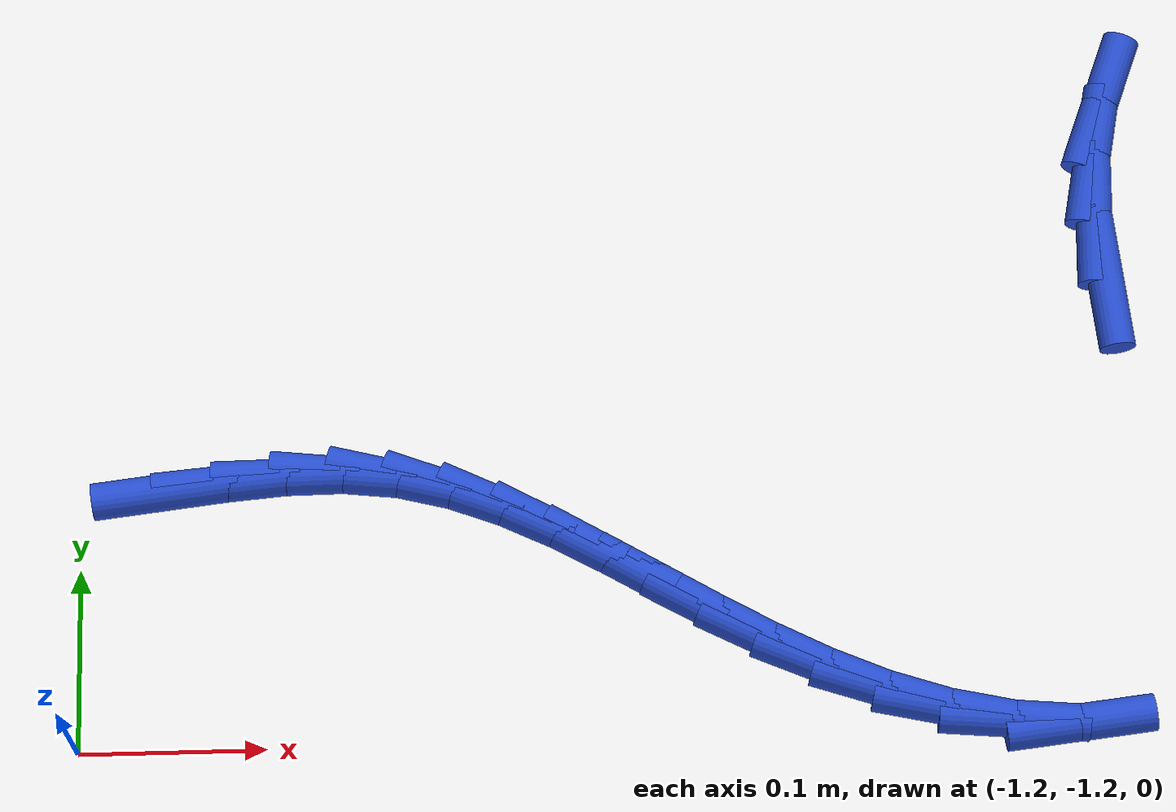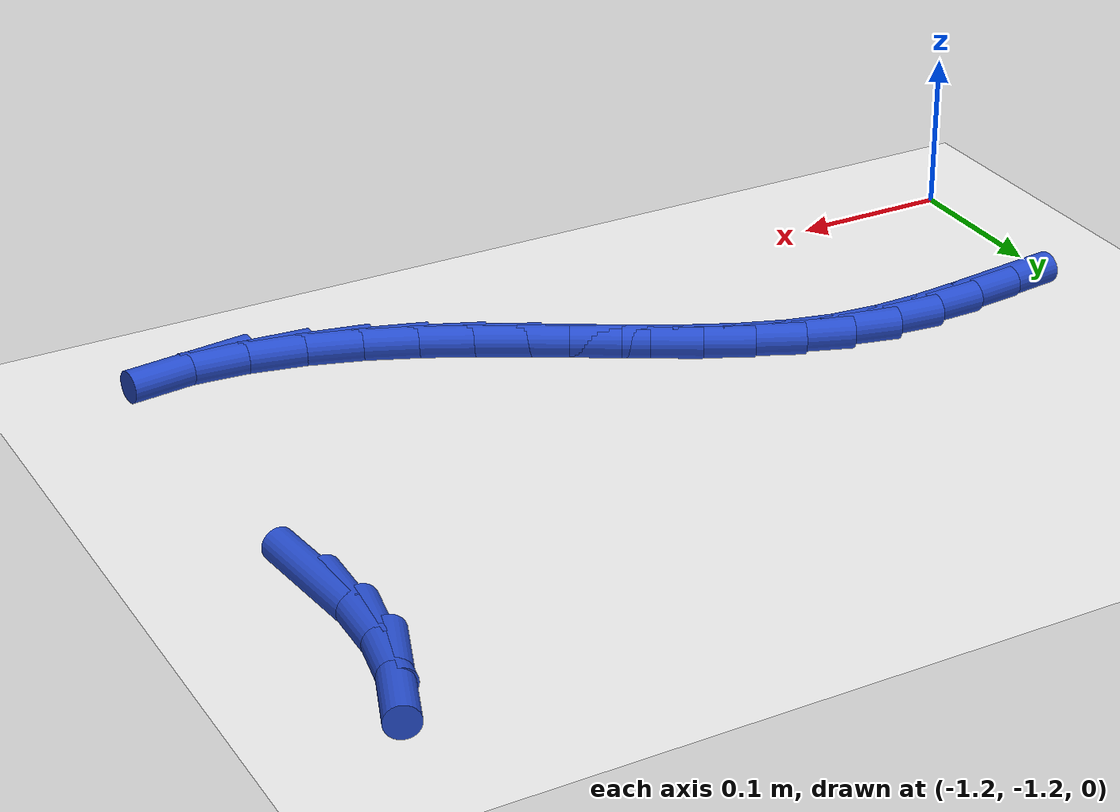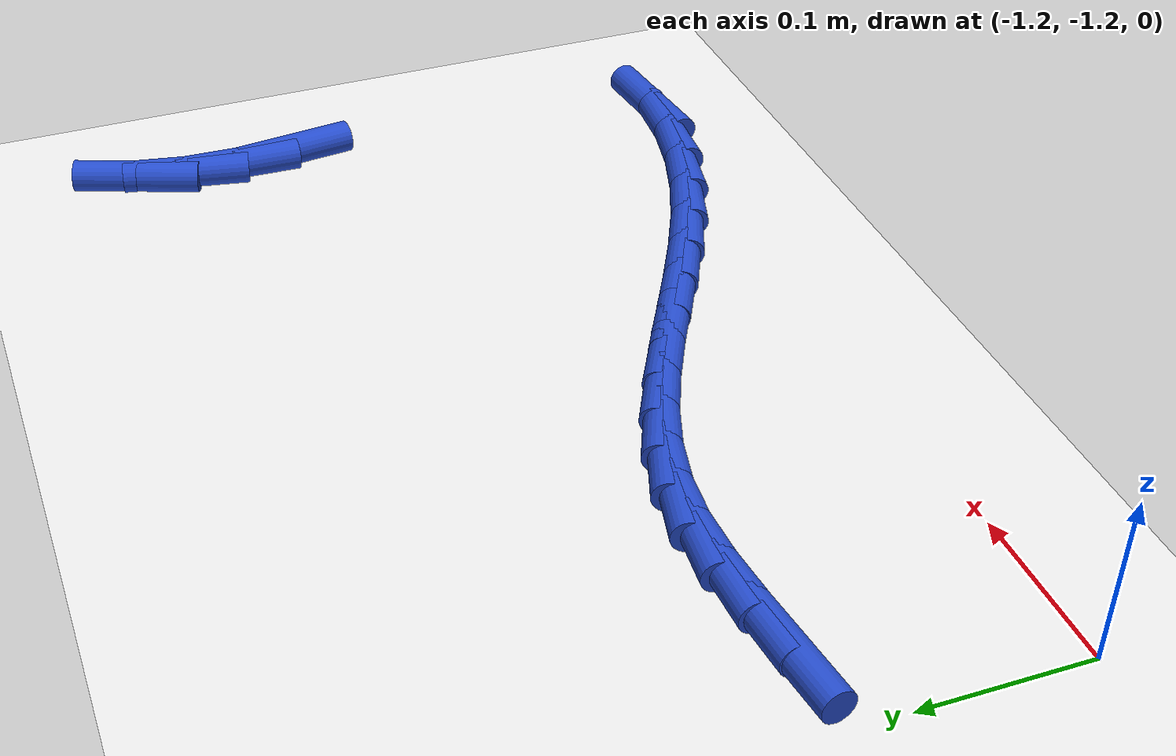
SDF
<sdf version="1.6">
 <world name="default">
  <model name="ground_plane">
   <static>1</static>
   <link name="link">
    <collision name="collision">
     <geometry><plane><normal>0 0 1</normal><size>100 100</size></plane></geometry>
     <surface><friction><ode><mu>100</mu><mu2>50</mu2></ode></friction></surface>
    </collision>
    <visual name="visual">
     <cast_shadows>0</cast_shadows>
     <geometry><plane><normal>0 0 1</normal><size>100 100</size></plane></geometry>
     <material>
      <script><uri>file://media/materials/scripts/gazebo.material</uri><name>Gazebo/WhiteGlow</name></script>
     </material>
    </visual>
   </link>
  </model>
  <model name="line">
   <link name="link_187">
    <pose>-1.1534591041920514 -1.0597393139319555 0.01 0 1.57 0.11962392462760403</pose>
    <collision name="collision">
     <geometry><cylinder><radius>0.01</radius><length>0.08</length></cylinder></geometry>
    </collision>
    <visual name="visual">
     <material>
      <script><name>Gazebo/Blue</name><uri>file://media/materials/scripts/gazebo.material</uri></script>
     </material>
     <geometry><cylinder><radius>0.01</radius><length>0.08</length></cylinder></geometry>
    </visual>
   </link>
   <link name="link_188">
    <pose>-1.121209077142977 -1.055862931268855 0.01 0 1.57 0.08878764631967405</pose>
    <collision name="collision">
     <geometry><cylinder><radius>0.01</radius><length>0.08</length></cylinder></geometry>
    </collision>
    <visual name="visual">
     <material>
      <script><name>Gazebo/Blue</name><uri>file://media/materials/scripts/gazebo.material</uri></script>
     </material>
     <geometry><cylinder><radius>0.01</radius><length>0.08</length></cylinder></geometry>
    </visual>
   </link>
   <link name="link_189">
    <pose>-1.089431234873752 -1.0530340138548526 0.01 0 1.57 0.01639721257508053</pose>
    <collision name="collision">
     <geometry><cylinder><radius>0.01</radius><length>0.08</length></cylinder></geometry>
    </collision>
    <visual name="visual">
     <material>
      <script><name>Gazebo/Blue</name><uri>file://media/materials/scripts/gazebo.material</uri></script>
     </material>
     <geometry><cylinder><radius>0.01</radius><length>0.08</length></cylinder></geometry>
    </visual>
   </link>
   <link name="link_190">
    <pose>-1.0584220406669251 -1.0525255039307306 0.01 0 1.57 -0.10180045560708739</pose>
    <collision name="collision">
     <geometry><cylinder><radius>0.01</radius><length>0.08</length></cylinder></geometry>
    </collision>
    <visual name="visual">
     <material>
      <script><name>Gazebo/Blue</name><uri>file://media/materials/scripts/gazebo.material</uri></script>
     </material>
     <geometry><cylinder><radius>0.01</radius><length>0.08</length></cylinder></geometry>
    </visual>
   </link>
   <link name="link_191">
    <pose>-1.0284703536715483 -1.0555851760895103 0.01 0 1.57 -0.23848225225362055</pose>
    <collision name="collision">
     <geometry><cylinder><radius>0.01</radius><length>0.08</length></cylinder></geometry>
    </collision>
    <visual name="visual">
     <material>
      <script><name>Gazebo/Blue</name><uri>file://media/materials/scripts/gazebo.material</uri></script>
     </material>
     <geometry><cylinder><radius>0.01</radius><length>0.08</length></cylinder></geometry>
    </visual>
   </link>
   <link name="link_192">
    <pose>-0.9996056835016374 -1.0626024273396937 0.01 0 1.57 -0.3521779632939503</pose>
    <collision name="collision">
     <geometry><cylinder><radius>0.01</radius><length>0.08</length></cylinder></geometry>
    </collision>
    <visual name="visual">
     <material>
      <script><name>Gazebo/Blue</name><uri>file://media/materials/scripts/gazebo.material</uri></script>
     </material>
     <geometry><cylinder><radius>0.01</radius><length>0.08</length></cylinder></geometry>
    </visual>
   </link>
   <link name="link_193">
    <pose>-0.971540229682452 -1.0729164431769866 0.01 0 1.57 -0.4371738961824702</pose>
    <collision name="collision">
     <geometry><cylinder><radius>0.01</radius><length>0.08</length></cylinder></geometry>
    </collision>
    <visual name="visual">
     <material>
      <script><name>Gazebo/Blue</name><uri>file://media/materials/scripts/gazebo.material</uri></script>
     </material>
     <geometry><cylinder><radius>0.01</radius><length>0.08</length></cylinder></geometry>
    </visual>
   </link>
   <link name="link_194">
    <pose>-0.9439668474543808 -1.0858023846888019 0.01 0 1.57 -0.49352798039174534</pose>
    <collision name="collision">
     <geometry><cylinder><radius>0.01</radius><length>0.08</length></cylinder></geometry>
    </collision>
    <visual name="visual">
     <material>
      <script><name>Gazebo/Blue</name><uri>file://media/materials/scripts/gazebo.material</uri></script>
     </material>
     <geometry><cylinder><radius>0.01</radius><length>0.08</length></cylinder></geometry>
    </visual>
   </link>
   <link name="link_195">
    <pose>-0.9165783920578122 -1.1005354129625524 0.01 0 1.57 -0.522834593570677</pose>
    <collision name="collision">
     <geometry><cylinder><radius>0.01</radius><length>0.08</length></cylinder></geometry>
    </collision>
    <visual name="visual">
     <material>
      <script><name>Gazebo/Blue</name><uri>file://media/materials/scripts/gazebo.material</uri></script>
     </material>
     <geometry><cylinder><radius>0.01</radius><length>0.08</length></cylinder></geometry>
    </visual>
   </link>
   <link name="link_196">
    <pose>-0.8890677187331351 -1.116390689085652 0.01 0 1.57 -0.5268540229970103</pose>
    <collision name="collision">
     <geometry><cylinder><radius>0.01</radius><length>0.08</length></cylinder></geometry>
    </collision>
    <visual name="visual">
     <material>
      <script><name>Gazebo/Blue</name><uri>file://media/materials/scripts/gazebo.material</uri></script>
     </material>
     <geometry><cylinder><radius>0.01</radius><length>0.08</length></cylinder></geometry>
    </visual>
   </link>
   <link name="link_197">
    <pose>-0.8611276827207376 -1.132643374145514 0.01 0 1.57 -0.5069343970400557</pose>
    <collision name="collision">
     <geometry><cylinder><radius>0.01</radius><length>0.08</length></cylinder></geometry>
    </collision>
    <visual name="visual">
     <material>
      <script><name>Gazebo/Blue</name><uri>file://media/materials/scripts/gazebo.material</uri></script>
     </material>
     <geometry><cylinder><radius>0.01</radius><length>0.08</length></cylinder></geometry>
    </visual>
   </link>
   <link name="link_198">
    <pose>-0.8324511392610093 -1.1485686292295512 0.01 0 1.57 -0.46399447418717765</pose>
    <collision name="collision">
     <geometry><cylinder><radius>0.01</radius><length>0.08</length></cylinder></geometry>
    </collision>
    <visual name="visual">
     <material>
      <script><name>Gazebo/Blue</name><uri>file://media/materials/scripts/gazebo.material</uri></script>
     </material>
     <geometry><cylinder><radius>0.01</radius><length>0.08</length></cylinder></geometry>
    </visual>
   </link>
   <link name="link_199">
    <pose>-0.8027309435943379 -1.163441615425177 0.01 0 1.57 -0.39888749043886634</pose>
    <collision name="collision">
     <geometry><cylinder><radius>0.01</radius><length>0.08</length></cylinder></geometry>
    </collision>
    <visual name="visual">
     <material>
      <script><name>Gazebo/Blue</name><uri>file://media/materials/scripts/gazebo.material</uri></script>
     </material>
     <geometry><cylinder><radius>0.01</radius><length>0.08</length></cylinder></geometry>
    </visual>
   </link>
   <link name="link_200">
    <pose>-0.7716599509611126 -1.1765374938198052 0.01 0 1.57 -0.3130439080829686</pose>
    <collision name="collision">
     <geometry><cylinder><radius>0.01</radius><length>0.08</length></cylinder></geometry>
    </collision>
    <visual name="visual">
     <material>
      <script><name>Gazebo/Blue</name><uri>file://media/materials/scripts/gazebo.material</uri></script>
     </material>
     <geometry><cylinder><radius>0.01</radius><length>0.08</length></cylinder></geometry>
    </visual>
   </link>
   <link name="link_201">
    <pose>-0.738931016601722 -1.1871314255008485 0.01 0 1.57 -0.2092026683756886</pose>
    <collision name="collision">
     <geometry><cylinder><radius>0.01</radius><length>0.08</length></cylinder></geometry>
    </collision>
    <visual name="visual">
     <material>
      <script><name>Gazebo/Blue</name><uri>file://media/materials/scripts/gazebo.material</uri></script>
     </material>
     <geometry><cylinder><radius>0.01</radius><length>0.08</length></cylinder></geometry>
    </visual>
   </link>
   <link name="link_202">
    <pose>-0.7042764418292816 -1.194488904714014 0.01 0 1.57 -0.08271220210380366</pose>
    <collision name="collision">
     <geometry><cylinder><radius>0.01</radius><length>0.08</length></cylinder></geometry>
    </collision>
    <visual name="visual">
     <material>
      <script><name>Gazebo/Blue</name><uri>file://media/materials/scripts/gazebo.material</uri></script>
     </material>
     <geometry><cylinder><radius>0.01</radius><length>0.08</length></cylinder></geometry>
    </visual>
   </link>
   <link name="link_203">
    <pose>-0.6694744862999573 -1.1973740334478695 0.01 0 1.57 0.11738803779557445</pose>
    <collision name="collision">
     <geometry><cylinder><radius>0.01</radius><length>0.08</length></cylinder></geometry>
    </collision>
    <visual name="visual">
     <material>
      <script><name>Gazebo/Blue</name><uri>file://media/materials/scripts/gazebo.material</uri></script>
     </material>
     <geometry><cylinder><radius>0.01</radius><length>0.08</length></cylinder></geometry>
    </visual>
   </link>
   <link name="link_212">
    <pose>-0.6427320111374822 -0.9512798832288553 0.01 0 1.57 -1.455883509906607</pose>
    <collision name="collision">
     <geometry><cylinder><radius>0.01</radius><length>0.08</length></cylinder></geometry>
    </collision>
    <visual name="visual">
     <material>
      <script><name>Gazebo/Blue</name><uri>file://media/materials/scripts/gazebo.material</uri></script>
     </material>
     <geometry><cylinder><radius>0.01</radius><length>0.08</length></cylinder></geometry>
    </visual>
   </link>
   <link name="link_213">
    <pose>-0.646955385970717 -0.9146889377125742 0.01 0 1.57 1.5452326420044313</pose>
    <collision name="collision">
     <geometry><cylinder><radius>0.01</radius><length>0.08</length></cylinder></geometry>
    </collision>
    <visual name="visual">
     <material>
      <script><name>Gazebo/Blue</name><uri>file://media/materials/scripts/gazebo.material</uri></script>
     </material>
     <geometry><cylinder><radius>0.01</radius><length>0.08</length></cylinder></geometry>
    </visual>
   </link>
   <link name="link_214">
    <pose>-0.6460965243332469 -0.8810993144991508 0.01 0 1.57 1.3851010886489115</pose>
    <collision name="collision">
     <geometry><cylinder><radius>0.01</radius><length>0.08</length></cylinder></geometry>
    </collision>
    <visual name="visual">
     <material>
      <script><name>Gazebo/Blue</name><uri>file://media/materials/scripts/gazebo.material</uri></script>
     </material>
     <geometry><cylinder><radius>0.01</radius><length>0.08</length></cylinder></geometry>
    </visual>
   </link>
   <link name="link_215">
    <pose>-0.6403331766170693 -0.8504202853617728 0.01 0 1.57 1.219486622526709</pose>
    <collision name="collision">
     <geometry><cylinder><radius>0.01</radius><length>0.08</length></cylinder></geometry>
    </collision>
    <visual name="visual">
     <material>
      <script><name>Gazebo/Blue</name><uri>file://media/materials/scripts/gazebo.material</uri></script>
     </material>
     <geometry><cylinder><radius>0.01</radius><length>0.08</length></cylinder></geometry>
    </visual>
   </link>
  </model>
 </world>
</sdf>
